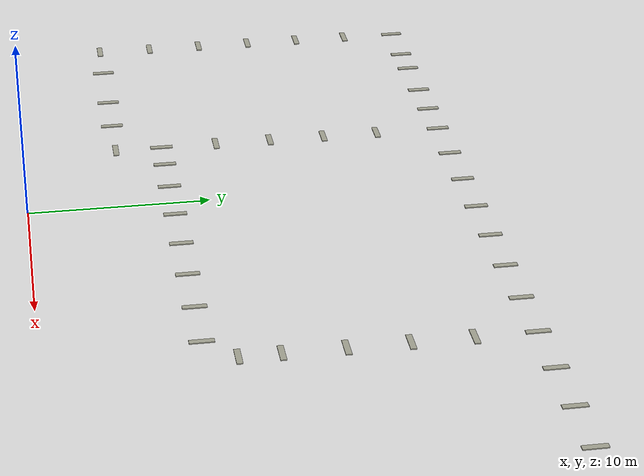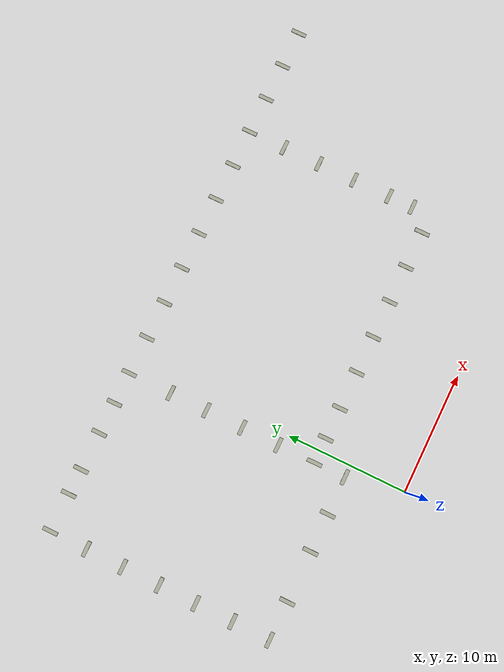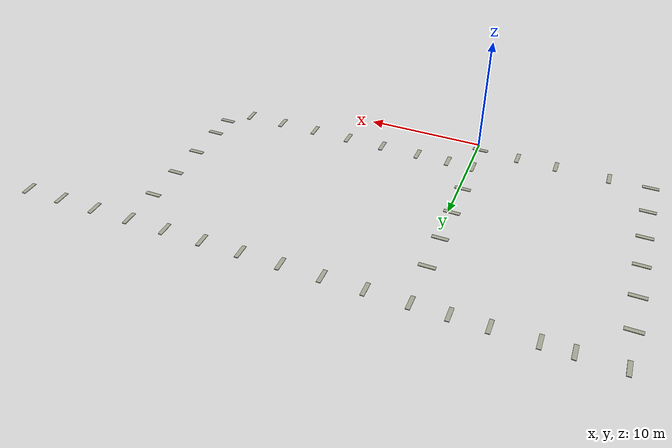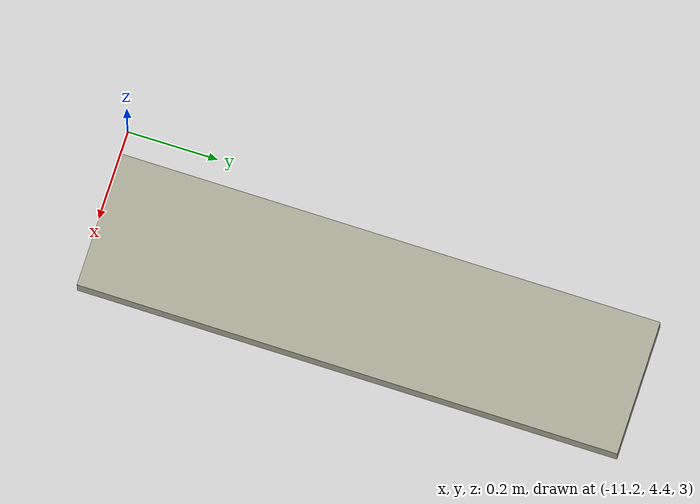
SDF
<?xml version="1.0" ?>
<sdf version="1.10">
  <model name="hallway_fluorescent_lights">
    <static>true</static>
    <!-- Generated from original hall_light_* point-light poses; long panel axis is perpendicular to hallway walls. -->
    <link name="hall_light_01">
      <pose>1 7.5 3 0 0 1.5708</pose>
      <collision name="hall_light_01_collision">
        <geometry>
          <box><size>1.2 0.3 0.05</size></box>
        </geometry>
      </collision>
      <visual name="hall_light_01_visual">
        <pose>0 0 -0.025 0 0 0</pose>
        <geometry>
          <box><size>1.2 0.3 0.05</size></box>
        </geometry>
        <material>
          <ambient>0.45 0.45 0.42 1</ambient>
          <diffuse>0.65 0.65 0.58 1</diffuse>
          <emissive>0.42 0.42 0.34 1</emissive>
          <specular>0.10 0.10 0.08 1</specular>
        </material>
      </visual>
      <light name="hall_light_01_spot" type="spot">
        <pose>0 0 -0.035 0 0 0</pose>
        <diffuse>1.0 0.98 0.88 1</diffuse>
        <specular>0.30 0.30 0.26 1</specular>
        <attenuation>
          <range>10</range>
          <constant>0.8</constant>
          <linear>0.2</linear>
          <quadratic>0.02</quadratic>
        </attenuation>
        <direction>0 0 -1</direction>
        <spot>
          <inner_angle>1.45</inner_angle>
          <outer_angle>2.45</outer_angle>
          <falloff>0.5</falloff>
        </spot>
        <cast_shadows>false</cast_shadows>
      </light>
    </link>
    <link name="hall_light_02">
      <pose>-1 7.5 3 0 0 1.5708</pose>
      <collision name="hall_light_02_collision">
        <geometry>
          <box><size>1.2 0.3 0.05</size></box>
        </geometry>
      </collision>
      <visual name="hall_light_02_visual">
        <pose>0 0 -0.025 0 0 0</pose>
        <geometry>
          <box><size>1.2 0.3 0.05</size></box>
        </geometry>
        <material>
          <ambient>0.45 0.45 0.42 1</ambient>
          <diffuse>0.65 0.65 0.58 1</diffuse>
          <emissive>0.42 0.42 0.34 1</emissive>
          <specular>0.10 0.10 0.08 1</specular>
        </material>
      </visual>
      <light name="hall_light_02_spot" type="spot">
        <pose>0 0 -0.035 0 0 0</pose>
        <diffuse>1.0 0.98 0.88 1</diffuse>
        <specular>0.30 0.30 0.26 1</specular>
        <attenuation>
          <range>10</range>
          <constant>0.8</constant>
          <linear>0.2</linear>
          <quadratic>0.02</quadratic>
        </attenuation>
        <direction>0 0 -1</direction>
        <spot>
          <inner_angle>1.45</inner_angle>
          <outer_angle>2.45</outer_angle>
          <falloff>0.5</falloff>
        </spot>
        <cast_shadows>false</cast_shadows>
      </light>
    </link>
    <link name="hall_light_03">
      <pose>-1 10.5 3 0 0 0</pose>
      <collision name="hall_light_03_collision">
        <geometry>
          <box><size>1.2 0.3 0.05</size></box>
        </geometry>
      </collision>
      <visual name="hall_light_03_visual">
        <pose>0 0 -0.025 0 0 0</pose>
        <geometry>
          <box><size>1.2 0.3 0.05</size></box>
        </geometry>
        <material>
          <ambient>0.45 0.45 0.42 1</ambient>
          <diffuse>0.65 0.65 0.58 1</diffuse>
          <emissive>0.42 0.42 0.34 1</emissive>
          <specular>0.10 0.10 0.08 1</specular>
        </material>
      </visual>
      <light name="hall_light_03_spot" type="spot">
        <pose>0 0 -0.035 0 0 0</pose>
        <diffuse>1.0 0.98 0.88 1</diffuse>
        <specular>0.30 0.30 0.26 1</specular>
        <attenuation>
          <range>10</range>
          <constant>0.8</constant>
          <linear>0.2</linear>
          <quadratic>0.02</quadratic>
        </attenuation>
        <direction>0 0 -1</direction>
        <spot>
          <inner_angle>1.45</inner_angle>
          <outer_angle>2.45</outer_angle>
          <falloff>0.5</falloff>
        </spot>
        <cast_shadows>false</cast_shadows>
      </light>
    </link>
    <link name="hall_light_04">
      <pose>-1 13.5 3 0 0 0</pose>
      <collision name="hall_light_04_collision">
        <geometry>
          <box><size>1.2 0.3 0.05</size></box>
        </geometry>
      </collision>
      <visual name="hall_light_04_visual">
        <pose>0 0 -0.025 0 0 0</pose>
        <geometry>
          <box><size>1.2 0.3 0.05</size></box>
        </geometry>
        <material>
          <ambient>0.45 0.45 0.42 1</ambient>
          <diffuse>0.65 0.65 0.58 1</diffuse>
          <emissive>0.42 0.42 0.34 1</emissive>
          <specular>0.10 0.10 0.08 1</specular>
        </material>
      </visual>
      <light name="hall_light_04_spot" type="spot">
        <pose>0 0 -0.035 0 0 0</pose>
        <diffuse>1.0 0.98 0.88 1</diffuse>
        <specular>0.30 0.30 0.26 1</specular>
        <attenuation>
          <range>10</range>
          <constant>0.8</constant>
          <linear>0.2</linear>
          <quadratic>0.02</quadratic>
        </attenuation>
        <direction>0 0 -1</direction>
        <spot>
          <inner_angle>1.45</inner_angle>
          <outer_angle>2.45</outer_angle>
          <falloff>0.5</falloff>
        </spot>
        <cast_shadows>false</cast_shadows>
      </light>
    </link>
    <link name="hall_light_05">
      <pose>-1 16.5 3 0 0 0</pose>
      <collision name="hall_light_05_collision">
        <geometry>
          <box><size>1.2 0.3 0.05</size></box>
        </geometry>
      </collision>
      <visual name="hall_light_05_visual">
        <pose>0 0 -0.025 0 0 0</pose>
        <geometry>
          <box><size>1.2 0.3 0.05</size></box>
        </geometry>
        <material>
          <ambient>0.45 0.45 0.42 1</ambient>
          <diffuse>0.65 0.65 0.58 1</diffuse>
          <emissive>0.42 0.42 0.34 1</emissive>
          <specular>0.10 0.10 0.08 1</specular>
        </material>
      </visual>
      <light name="hall_light_05_spot" type="spot">
        <pose>0 0 -0.035 0 0 0</pose>
        <diffuse>1.0 0.98 0.88 1</diffuse>
        <specular>0.30 0.30 0.26 1</specular>
        <attenuation>
          <range>10</range>
          <constant>0.8</constant>
          <linear>0.2</linear>
          <quadratic>0.02</quadratic>
        </attenuation>
        <direction>0 0 -1</direction>
        <spot>
          <inner_angle>1.45</inner_angle>
          <outer_angle>2.45</outer_angle>
          <falloff>0.5</falloff>
        </spot>
        <cast_shadows>false</cast_shadows>
      </light>
    </link>
    <link name="hall_light_06">
      <pose>-1 19.5 3 0 0 0</pose>
      <collision name="hall_light_06_collision">
        <geometry>
          <box><size>1.2 0.3 0.05</size></box>
        </geometry>
      </collision>
      <visual name="hall_light_06_visual">
        <pose>0 0 -0.025 0 0 0</pose>
        <geometry>
          <box><size>1.2 0.3 0.05</size></box>
        </geometry>
        <material>
          <ambient>0.45 0.45 0.42 1</ambient>
          <diffuse>0.65 0.65 0.58 1</diffuse>
          <emissive>0.42 0.42 0.34 1</emissive>
          <specular>0.10 0.10 0.08 1</specular>
        </material>
      </visual>
      <light name="hall_light_06_spot" type="spot">
        <pose>0 0 -0.035 0 0 0</pose>
        <diffuse>1.0 0.98 0.88 1</diffuse>
        <specular>0.30 0.30 0.26 1</specular>
        <attenuation>
          <range>10</range>
          <constant>0.8</constant>
          <linear>0.2</linear>
          <quadratic>0.02</quadratic>
        </attenuation>
        <direction>0 0 -1</direction>
        <spot>
          <inner_angle>1.45</inner_angle>
          <outer_angle>2.45</outer_angle>
          <falloff>0.5</falloff>
        </spot>
        <cast_shadows>false</cast_shadows>
      </light>
    </link>
    <link name="hall_light_07">
      <pose>-1 23 3 0 0 1.5708</pose>
      <collision name="hall_light_07_collision">
        <geometry>
          <box><size>1.2 0.3 0.05</size></box>
        </geometry>
      </collision>
      <visual name="hall_light_07_visual">
        <pose>0 0 -0.025 0 0 0</pose>
        <geometry>
          <box><size>1.2 0.3 0.05</size></box>
        </geometry>
        <material>
          <ambient>0.45 0.45 0.42 1</ambient>
          <diffuse>0.65 0.65 0.58 1</diffuse>
          <emissive>0.42 0.42 0.34 1</emissive>
          <specular>0.10 0.10 0.08 1</specular>
        </material>
      </visual>
      <light name="hall_light_07_spot" type="spot">
        <pose>0 0 -0.035 0 0 0</pose>
        <diffuse>1.0 0.98 0.88 1</diffuse>
        <specular>0.30 0.30 0.26 1</specular>
        <attenuation>
          <range>10</range>
          <constant>0.8</constant>
          <linear>0.2</linear>
          <quadratic>0.02</quadratic>
        </attenuation>
        <direction>0 0 -1</direction>
        <spot>
          <inner_angle>1.45</inner_angle>
          <outer_angle>2.45</outer_angle>
          <falloff>0.5</falloff>
        </spot>
        <cast_shadows>false</cast_shadows>
      </light>
    </link>
    <link name="hall_light_08">
      <pose>2 23 3 0 0 1.5708</pose>
      <collision name="hall_light_08_collision">
        <geometry>
          <box><size>1.2 0.3 0.05</size></box>
        </geometry>
      </collision>
      <visual name="hall_light_08_visual">
        <pose>0 0 -0.025 0 0 0</pose>
        <geometry>
          <box><size>1.2 0.3 0.05</size></box>
        </geometry>
        <material>
          <ambient>0.45 0.45 0.42 1</ambient>
          <diffuse>0.65 0.65 0.58 1</diffuse>
          <emissive>0.42 0.42 0.34 1</emissive>
          <specular>0.10 0.10 0.08 1</specular>
        </material>
      </visual>
      <light name="hall_light_08_spot" type="spot">
        <pose>0 0 -0.035 0 0 0</pose>
        <diffuse>1.0 0.98 0.88 1</diffuse>
        <specular>0.30 0.30 0.26 1</specular>
        <attenuation>
          <range>10</range>
          <constant>0.8</constant>
          <linear>0.2</linear>
          <quadratic>0.02</quadratic>
        </attenuation>
        <direction>0 0 -1</direction>
        <spot>
          <inner_angle>1.45</inner_angle>
          <outer_angle>2.45</outer_angle>
          <falloff>0.5</falloff>
        </spot>
        <cast_shadows>false</cast_shadows>
      </light>
    </link>
    <link name="hall_light_09">
      <pose>5 23 3 0 0 1.5708</pose>
      <collision name="hall_light_09_collision">
        <geometry>
          <box><size>1.2 0.3 0.05</size></box>
        </geometry>
      </collision>
      <visual name="hall_light_09_visual">
        <pose>0 0 -0.025 0 0 0</pose>
        <geometry>
          <box><size>1.2 0.3 0.05</size></box>
        </geometry>
        <material>
          <ambient>0.45 0.45 0.42 1</ambient>
          <diffuse>0.65 0.65 0.58 1</diffuse>
          <emissive>0.42 0.42 0.34 1</emissive>
          <specular>0.10 0.10 0.08 1</specular>
        </material>
      </visual>
      <light name="hall_light_09_spot" type="spot">
        <pose>0 0 -0.035 0 0 0</pose>
        <diffuse>1.0 0.98 0.88 1</diffuse>
        <specular>0.30 0.30 0.26 1</specular>
        <attenuation>
          <range>10</range>
          <constant>0.8</constant>
          <linear>0.2</linear>
          <quadratic>0.02</quadratic>
        </attenuation>
        <direction>0 0 -1</direction>
        <spot>
          <inner_angle>1.45</inner_angle>
          <outer_angle>2.45</outer_angle>
          <falloff>0.5</falloff>
        </spot>
        <cast_shadows>false</cast_shadows>
      </light>
    </link>
    <link name="hall_light_10">
      <pose>8 23 3 0 0 1.5708</pose>
      <collision name="hall_light_10_collision">
        <geometry>
          <box><size>1.2 0.3 0.05</size></box>
        </geometry>
      </collision>
      <visual name="hall_light_10_visual">
        <pose>0 0 -0.025 0 0 0</pose>
        <geometry>
          <box><size>1.2 0.3 0.05</size></box>
        </geometry>
        <material>
          <ambient>0.45 0.45 0.42 1</ambient>
          <diffuse>0.65 0.65 0.58 1</diffuse>
          <emissive>0.42 0.42 0.34 1</emissive>
          <specular>0.10 0.10 0.08 1</specular>
        </material>
      </visual>
      <light name="hall_light_10_spot" type="spot">
        <pose>0 0 -0.035 0 0 0</pose>
        <diffuse>1.0 0.98 0.88 1</diffuse>
        <specular>0.30 0.30 0.26 1</specular>
        <attenuation>
          <range>10</range>
          <constant>0.8</constant>
          <linear>0.2</linear>
          <quadratic>0.02</quadratic>
        </attenuation>
        <direction>0 0 -1</direction>
        <spot>
          <inner_angle>1.45</inner_angle>
          <outer_angle>2.45</outer_angle>
          <falloff>0.5</falloff>
        </spot>
        <cast_shadows>false</cast_shadows>
      </light>
    </link>
    <link name="hall_light_11">
      <pose>11 23 3 0 0 1.5708</pose>
      <collision name="hall_light_11_collision">
        <geometry>
          <box><size>1.2 0.3 0.05</size></box>
        </geometry>
      </collision>
      <visual name="hall_light_11_visual">
        <pose>0 0 -0.025 0 0 0</pose>
        <geometry>
          <box><size>1.2 0.3 0.05</size></box>
        </geometry>
        <material>
          <ambient>0.45 0.45 0.42 1</ambient>
          <diffuse>0.65 0.65 0.58 1</diffuse>
          <emissive>0.42 0.42 0.34 1</emissive>
          <specular>0.10 0.10 0.08 1</specular>
        </material>
      </visual>
      <light name="hall_light_11_spot" type="spot">
        <pose>0 0 -0.035 0 0 0</pose>
        <diffuse>1.0 0.98 0.88 1</diffuse>
        <specular>0.30 0.30 0.26 1</specular>
        <attenuation>
          <range>10</range>
          <constant>0.8</constant>
          <linear>0.2</linear>
          <quadratic>0.02</quadratic>
        </attenuation>
        <direction>0 0 -1</direction>
        <spot>
          <inner_angle>1.45</inner_angle>
          <outer_angle>2.45</outer_angle>
          <falloff>0.5</falloff>
        </spot>
        <cast_shadows>false</cast_shadows>
      </light>
    </link>
    <link name="hall_light_12">
      <pose>14 23 3 0 0 1.5708</pose>
      <collision name="hall_light_12_collision">
        <geometry>
          <box><size>1.2 0.3 0.05</size></box>
        </geometry>
      </collision>
      <visual name="hall_light_12_visual">
        <pose>0 0 -0.025 0 0 0</pose>
        <geometry>
          <box><size>1.2 0.3 0.05</size></box>
        </geometry>
        <material>
          <ambient>0.45 0.45 0.42 1</ambient>
          <diffuse>0.65 0.65 0.58 1</diffuse>
          <emissive>0.42 0.42 0.34 1</emissive>
          <specular>0.10 0.10 0.08 1</specular>
        </material>
      </visual>
      <light name="hall_light_12_spot" type="spot">
        <pose>0 0 -0.035 0 0 0</pose>
        <diffuse>1.0 0.98 0.88 1</diffuse>
        <specular>0.30 0.30 0.26 1</specular>
        <attenuation>
          <range>10</range>
          <constant>0.8</constant>
          <linear>0.2</linear>
          <quadratic>0.02</quadratic>
        </attenuation>
        <direction>0 0 -1</direction>
        <spot>
          <inner_angle>1.45</inner_angle>
          <outer_angle>2.45</outer_angle>
          <falloff>0.5</falloff>
        </spot>
        <cast_shadows>false</cast_shadows>
      </light>
    </link>
    <link name="hall_light_13">
      <pose>17 23 3 0 0 1.5708</pose>
      <collision name="hall_light_13_collision">
        <geometry>
          <box><size>1.2 0.3 0.05</size></box>
        </geometry>
      </collision>
      <visual name="hall_light_13_visual">
        <pose>0 0 -0.025 0 0 0</pose>
        <geometry>
          <box><size>1.2 0.3 0.05</size></box>
        </geometry>
        <material>
          <ambient>0.45 0.45 0.42 1</ambient>
          <diffuse>0.65 0.65 0.58 1</diffuse>
          <emissive>0.42 0.42 0.34 1</emissive>
          <specular>0.10 0.10 0.08 1</specular>
        </material>
      </visual>
      <light name="hall_light_13_spot" type="spot">
        <pose>0 0 -0.035 0 0 0</pose>
        <diffuse>1.0 0.98 0.88 1</diffuse>
        <specular>0.30 0.30 0.26 1</specular>
        <attenuation>
          <range>10</range>
          <constant>0.8</constant>
          <linear>0.2</linear>
          <quadratic>0.02</quadratic>
        </attenuation>
        <direction>0 0 -1</direction>
        <spot>
          <inner_angle>1.45</inner_angle>
          <outer_angle>2.45</outer_angle>
          <falloff>0.5</falloff>
        </spot>
        <cast_shadows>false</cast_shadows>
      </light>
    </link>
    <link name="hall_light_14">
      <pose>20 23 3 0 0 1.5708</pose>
      <collision name="hall_light_14_collision">
        <geometry>
          <box><size>1.2 0.3 0.05</size></box>
        </geometry>
      </collision>
      <visual name="hall_light_14_visual">
        <pose>0 0 -0.025 0 0 0</pose>
        <geometry>
          <box><size>1.2 0.3 0.05</size></box>
        </geometry>
        <material>
          <ambient>0.45 0.45 0.42 1</ambient>
          <diffuse>0.65 0.65 0.58 1</diffuse>
          <emissive>0.42 0.42 0.34 1</emissive>
          <specular>0.10 0.10 0.08 1</specular>
        </material>
      </visual>
      <light name="hall_light_14_spot" type="spot">
        <pose>0 0 -0.035 0 0 0</pose>
        <diffuse>1.0 0.98 0.88 1</diffuse>
        <specular>0.30 0.30 0.26 1</specular>
        <attenuation>
          <range>10</range>
          <constant>0.8</constant>
          <linear>0.2</linear>
          <quadratic>0.02</quadratic>
        </attenuation>
        <direction>0 0 -1</direction>
        <spot>
          <inner_angle>1.45</inner_angle>
          <outer_angle>2.45</outer_angle>
          <falloff>0.5</falloff>
        </spot>
        <cast_shadows>false</cast_shadows>
      </light>
    </link>
    <link name="hall_light_15">
      <pose>23 23 3 0 0 1.5708</pose>
      <collision name="hall_light_15_collision">
        <geometry>
          <box><size>1.2 0.3 0.05</size></box>
        </geometry>
      </collision>
      <visual name="hall_light_15_visual">
        <pose>0 0 -0.025 0 0 0</pose>
        <geometry>
          <box><size>1.2 0.3 0.05</size></box>
        </geometry>
        <material>
          <ambient>0.45 0.45 0.42 1</ambient>
          <diffuse>0.65 0.65 0.58 1</diffuse>
          <emissive>0.42 0.42 0.34 1</emissive>
          <specular>0.10 0.10 0.08 1</specular>
        </material>
      </visual>
      <light name="hall_light_15_spot" type="spot">
        <pose>0 0 -0.035 0 0 0</pose>
        <diffuse>1.0 0.98 0.88 1</diffuse>
        <specular>0.30 0.30 0.26 1</specular>
        <attenuation>
          <range>10</range>
          <constant>0.8</constant>
          <linear>0.2</linear>
          <quadratic>0.02</quadratic>
        </attenuation>
        <direction>0 0 -1</direction>
        <spot>
          <inner_angle>1.45</inner_angle>
          <outer_angle>2.45</outer_angle>
          <falloff>0.5</falloff>
        </spot>
        <cast_shadows>false</cast_shadows>
      </light>
    </link>
    <link name="hall_light_16">
      <pose>26 23 3 0 0 1.5708</pose>
      <collision name="hall_light_16_collision">
        <geometry>
          <box><size>1.2 0.3 0.05</size></box>
        </geometry>
      </collision>
      <visual name="hall_light_16_visual">
        <pose>0 0 -0.025 0 0 0</pose>
        <geometry>
          <box><size>1.2 0.3 0.05</size></box>
        </geometry>
        <material>
          <ambient>0.45 0.45 0.42 1</ambient>
          <diffuse>0.65 0.65 0.58 1</diffuse>
          <emissive>0.42 0.42 0.34 1</emissive>
          <specular>0.10 0.10 0.08 1</specular>
        </material>
      </visual>
      <light name="hall_light_16_spot" type="spot">
        <pose>0 0 -0.035 0 0 0</pose>
        <diffuse>1.0 0.98 0.88 1</diffuse>
        <specular>0.30 0.30 0.26 1</specular>
        <attenuation>
          <range>10</range>
          <constant>0.8</constant>
          <linear>0.2</linear>
          <quadratic>0.02</quadratic>
        </attenuation>
        <direction>0 0 -1</direction>
        <spot>
          <inner_angle>1.45</inner_angle>
          <outer_angle>2.45</outer_angle>
          <falloff>0.5</falloff>
        </spot>
        <cast_shadows>false</cast_shadows>
      </light>
    </link>
    <link name="hall_light_17">
      <pose>29 23 3 0 0 1.5708</pose>
      <collision name="hall_light_17_collision">
        <geometry>
          <box><size>1.2 0.3 0.05</size></box>
        </geometry>
      </collision>
      <visual name="hall_light_17_visual">
        <pose>0 0 -0.025 0 0 0</pose>
        <geometry>
          <box><size>1.2 0.3 0.05</size></box>
        </geometry>
        <material>
          <ambient>0.45 0.45 0.42 1</ambient>
          <diffuse>0.65 0.65 0.58 1</diffuse>
          <emissive>0.42 0.42 0.34 1</emissive>
          <specular>0.10 0.10 0.08 1</specular>
        </material>
      </visual>
      <light name="hall_light_17_spot" type="spot">
        <pose>0 0 -0.035 0 0 0</pose>
        <diffuse>1.0 0.98 0.88 1</diffuse>
        <specular>0.30 0.30 0.26 1</specular>
        <attenuation>
          <range>10</range>
          <constant>0.8</constant>
          <linear>0.2</linear>
          <quadratic>0.02</quadratic>
        </attenuation>
        <direction>0 0 -1</direction>
        <spot>
          <inner_angle>1.45</inner_angle>
          <outer_angle>2.45</outer_angle>
          <falloff>0.5</falloff>
        </spot>
        <cast_shadows>false</cast_shadows>
      </light>
    </link>
    <link name="hall_light_14_18">
      <pose>20 20 3 0 0 0</pose>
      <collision name="hall_light_14_18_collision">
        <geometry>
          <box><size>1.2 0.3 0.05</size></box>
        </geometry>
      </collision>
      <visual name="hall_light_14_18_visual">
        <pose>0 0 -0.025 0 0 0</pose>
        <geometry>
          <box><size>1.2 0.3 0.05</size></box>
        </geometry>
        <material>
          <ambient>0.45 0.45 0.42 1</ambient>
          <diffuse>0.65 0.65 0.58 1</diffuse>
          <emissive>0.42 0.42 0.34 1</emissive>
          <specular>0.10 0.10 0.08 1</specular>
        </material>
      </visual>
      <light name="hall_light_14_18_spot" type="spot">
        <pose>0 0 -0.035 0 0 0</pose>
        <diffuse>1.0 0.98 0.88 1</diffuse>
        <specular>0.30 0.30 0.26 1</specular>
        <attenuation>
          <range>10</range>
          <constant>0.8</constant>
          <linear>0.2</linear>
          <quadratic>0.02</quadratic>
        </attenuation>
        <direction>0 0 -1</direction>
        <spot>
          <inner_angle>1.45</inner_angle>
          <outer_angle>2.45</outer_angle>
          <falloff>0.5</falloff>
        </spot>
        <cast_shadows>false</cast_shadows>
      </light>
    </link>
    <link name="hall_light_19">
      <pose>20 17 3 0 0 0</pose>
      <collision name="hall_light_19_collision">
        <geometry>
          <box><size>1.2 0.3 0.05</size></box>
        </geometry>
      </collision>
      <visual name="hall_light_19_visual">
        <pose>0 0 -0.025 0 0 0</pose>
        <geometry>
          <box><size>1.2 0.3 0.05</size></box>
        </geometry>
        <material>
          <ambient>0.45 0.45 0.42 1</ambient>
          <diffuse>0.65 0.65 0.58 1</diffuse>
          <emissive>0.42 0.42 0.34 1</emissive>
          <specular>0.10 0.10 0.08 1</specular>
        </material>
      </visual>
      <light name="hall_light_19_spot" type="spot">
        <pose>0 0 -0.035 0 0 0</pose>
        <diffuse>1.0 0.98 0.88 1</diffuse>
        <specular>0.30 0.30 0.26 1</specular>
        <attenuation>
          <range>10</range>
          <constant>0.8</constant>
          <linear>0.2</linear>
          <quadratic>0.02</quadratic>
        </attenuation>
        <direction>0 0 -1</direction>
        <spot>
          <inner_angle>1.45</inner_angle>
          <outer_angle>2.45</outer_angle>
          <falloff>0.5</falloff>
        </spot>
        <cast_shadows>false</cast_shadows>
      </light>
    </link>
    <link name="hall_light_20">
      <pose>20 14 3 0 0 0</pose>
      <collision name="hall_light_20_collision">
        <geometry>
          <box><size>1.2 0.3 0.05</size></box>
        </geometry>
      </collision>
      <visual name="hall_light_20_visual">
        <pose>0 0 -0.025 0 0 0</pose>
        <geometry>
          <box><size>1.2 0.3 0.05</size></box>
        </geometry>
        <material>
          <ambient>0.45 0.45 0.42 1</ambient>
          <diffuse>0.65 0.65 0.58 1</diffuse>
          <emissive>0.42 0.42 0.34 1</emissive>
          <specular>0.10 0.10 0.08 1</specular>
        </material>
      </visual>
      <light name="hall_light_20_spot" type="spot">
        <pose>0 0 -0.035 0 0 0</pose>
        <diffuse>1.0 0.98 0.88 1</diffuse>
        <specular>0.30 0.30 0.26 1</specular>
        <attenuation>
          <range>10</range>
          <constant>0.8</constant>
          <linear>0.2</linear>
          <quadratic>0.02</quadratic>
        </attenuation>
        <direction>0 0 -1</direction>
        <spot>
          <inner_angle>1.45</inner_angle>
          <outer_angle>2.45</outer_angle>
          <falloff>0.5</falloff>
        </spot>
        <cast_shadows>false</cast_shadows>
      </light>
    </link>
    <link name="hall_light_21">
      <pose>20 11 3 0 0 0</pose>
      <collision name="hall_light_21_collision">
        <geometry>
          <box><size>1.2 0.3 0.05</size></box>
        </geometry>
      </collision>
      <visual name="hall_light_21_visual">
        <pose>0 0 -0.025 0 0 0</pose>
        <geometry>
          <box><size>1.2 0.3 0.05</size></box>
        </geometry>
        <material>
          <ambient>0.45 0.45 0.42 1</ambient>
          <diffuse>0.65 0.65 0.58 1</diffuse>
          <emissive>0.42 0.42 0.34 1</emissive>
          <specular>0.10 0.10 0.08 1</specular>
        </material>
      </visual>
      <light name="hall_light_21_spot" type="spot">
        <pose>0 0 -0.035 0 0 0</pose>
        <diffuse>1.0 0.98 0.88 1</diffuse>
        <specular>0.30 0.30 0.26 1</specular>
        <attenuation>
          <range>10</range>
          <constant>0.8</constant>
          <linear>0.2</linear>
          <quadratic>0.02</quadratic>
        </attenuation>
        <direction>0 0 -1</direction>
        <spot>
          <inner_angle>1.45</inner_angle>
          <outer_angle>2.45</outer_angle>
          <falloff>0.5</falloff>
        </spot>
        <cast_shadows>false</cast_shadows>
      </light>
    </link>
    <link name="hall_light_22">
      <pose>20 9 3 0 0 0</pose>
      <collision name="hall_light_22_collision">
        <geometry>
          <box><size>1.2 0.3 0.05</size></box>
        </geometry>
      </collision>
      <visual name="hall_light_22_visual">
        <pose>0 0 -0.025 0 0 0</pose>
        <geometry>
          <box><size>1.2 0.3 0.05</size></box>
        </geometry>
        <material>
          <ambient>0.45 0.45 0.42 1</ambient>
          <diffuse>0.65 0.65 0.58 1</diffuse>
          <emissive>0.42 0.42 0.34 1</emissive>
          <specular>0.10 0.10 0.08 1</specular>
        </material>
      </visual>
      <light name="hall_light_22_spot" type="spot">
        <pose>0 0 -0.035 0 0 0</pose>
        <diffuse>1.0 0.98 0.88 1</diffuse>
        <specular>0.30 0.30 0.26 1</specular>
        <attenuation>
          <range>10</range>
          <constant>0.8</constant>
          <linear>0.2</linear>
          <quadratic>0.02</quadratic>
        </attenuation>
        <direction>0 0 -1</direction>
        <spot>
          <inner_angle>1.45</inner_angle>
          <outer_angle>2.45</outer_angle>
          <falloff>0.5</falloff>
        </spot>
        <cast_shadows>false</cast_shadows>
      </light>
    </link>
    <link name="hall_light_23">
      <pose>18.5 7.5 3 0 0 1.5708</pose>
      <collision name="hall_light_23_collision">
        <geometry>
          <box><size>1.2 0.3 0.05</size></box>
        </geometry>
      </collision>
      <visual name="hall_light_23_visual">
        <pose>0 0 -0.025 0 0 0</pose>
        <geometry>
          <box><size>1.2 0.3 0.05</size></box>
        </geometry>
        <material>
          <ambient>0.45 0.45 0.42 1</ambient>
          <diffuse>0.65 0.65 0.58 1</diffuse>
          <emissive>0.42 0.42 0.34 1</emissive>
          <specular>0.10 0.10 0.08 1</specular>
        </material>
      </visual>
      <light name="hall_light_23_spot" type="spot">
        <pose>0 0 -0.035 0 0 0</pose>
        <diffuse>1.0 0.98 0.88 1</diffuse>
        <specular>0.30 0.30 0.26 1</specular>
        <attenuation>
          <range>10</range>
          <constant>0.8</constant>
          <linear>0.2</linear>
          <quadratic>0.02</quadratic>
        </attenuation>
        <direction>0 0 -1</direction>
        <spot>
          <inner_angle>1.45</inner_angle>
          <outer_angle>2.45</outer_angle>
          <falloff>0.5</falloff>
        </spot>
        <cast_shadows>false</cast_shadows>
      </light>
    </link>
    <link name="hall_light_24">
      <pose>15.5 7.5 3 0 0 1.5708</pose>
      <collision name="hall_light_24_collision">
        <geometry>
          <box><size>1.2 0.3 0.05</size></box>
        </geometry>
      </collision>
      <visual name="hall_light_24_visual">
        <pose>0 0 -0.025 0 0 0</pose>
        <geometry>
          <box><size>1.2 0.3 0.05</size></box>
        </geometry>
        <material>
          <ambient>0.45 0.45 0.42 1</ambient>
          <diffuse>0.65 0.65 0.58 1</diffuse>
          <emissive>0.42 0.42 0.34 1</emissive>
          <specular>0.10 0.10 0.08 1</specular>
        </material>
      </visual>
      <light name="hall_light_24_spot" type="spot">
        <pose>0 0 -0.035 0 0 0</pose>
        <diffuse>1.0 0.98 0.88 1</diffuse>
        <specular>0.30 0.30 0.26 1</specular>
        <attenuation>
          <range>10</range>
          <constant>0.8</constant>
          <linear>0.2</linear>
          <quadratic>0.02</quadratic>
        </attenuation>
        <direction>0 0 -1</direction>
        <spot>
          <inner_angle>1.45</inner_angle>
          <outer_angle>2.45</outer_angle>
          <falloff>0.5</falloff>
        </spot>
        <cast_shadows>false</cast_shadows>
      </light>
    </link>
    <link name="hall_light_25">
      <pose>12.5 7.5 3 0 0 1.5708</pose>
      <collision name="hall_light_25_collision">
        <geometry>
          <box><size>1.2 0.3 0.05</size></box>
        </geometry>
      </collision>
      <visual name="hall_light_25_visual">
        <pose>0 0 -0.025 0 0 0</pose>
        <geometry>
          <box><size>1.2 0.3 0.05</size></box>
        </geometry>
        <material>
          <ambient>0.45 0.45 0.42 1</ambient>
          <diffuse>0.65 0.65 0.58 1</diffuse>
          <emissive>0.42 0.42 0.34 1</emissive>
          <specular>0.10 0.10 0.08 1</specular>
        </material>
      </visual>
      <light name="hall_light_25_spot" type="spot">
        <pose>0 0 -0.035 0 0 0</pose>
        <diffuse>1.0 0.98 0.88 1</diffuse>
        <specular>0.30 0.30 0.26 1</specular>
        <attenuation>
          <range>10</range>
          <constant>0.8</constant>
          <linear>0.2</linear>
          <quadratic>0.02</quadratic>
        </attenuation>
        <direction>0 0 -1</direction>
        <spot>
          <inner_angle>1.45</inner_angle>
          <outer_angle>2.45</outer_angle>
          <falloff>0.5</falloff>
        </spot>
        <cast_shadows>false</cast_shadows>
      </light>
    </link>
    <link name="hall_light_26">
      <pose>9.5 7.5 3 0 0 1.5708</pose>
      <collision name="hall_light_26_collision">
        <geometry>
          <box><size>1.2 0.3 0.05</size></box>
        </geometry>
      </collision>
      <visual name="hall_light_26_visual">
        <pose>0 0 -0.025 0 0 0</pose>
        <geometry>
          <box><size>1.2 0.3 0.05</size></box>
        </geometry>
        <material>
          <ambient>0.45 0.45 0.42 1</ambient>
          <diffuse>0.65 0.65 0.58 1</diffuse>
          <emissive>0.42 0.42 0.34 1</emissive>
          <specular>0.10 0.10 0.08 1</specular>
        </material>
      </visual>
      <light name="hall_light_26_spot" type="spot">
        <pose>0 0 -0.035 0 0 0</pose>
        <diffuse>1.0 0.98 0.88 1</diffuse>
        <specular>0.30 0.30 0.26 1</specular>
        <attenuation>
          <range>10</range>
          <constant>0.8</constant>
          <linear>0.2</linear>
          <quadratic>0.02</quadratic>
        </attenuation>
        <direction>0 0 -1</direction>
        <spot>
          <inner_angle>1.45</inner_angle>
          <outer_angle>2.45</outer_angle>
          <falloff>0.5</falloff>
        </spot>
        <cast_shadows>false</cast_shadows>
      </light>
    </link>
    <link name="hall_light_27">
      <pose>6.5 7.5 3 0 0 1.5708</pose>
      <collision name="hall_light_27_collision">
        <geometry>
          <box><size>1.2 0.3 0.05</size></box>
        </geometry>
      </collision>
      <visual name="hall_light_27_visual">
        <pose>0 0 -0.025 0 0 0</pose>
        <geometry>
          <box><size>1.2 0.3 0.05</size></box>
        </geometry>
        <material>
          <ambient>0.45 0.45 0.42 1</ambient>
          <diffuse>0.65 0.65 0.58 1</diffuse>
          <emissive>0.42 0.42 0.34 1</emissive>
          <specular>0.10 0.10 0.08 1</specular>
        </material>
      </visual>
      <light name="hall_light_27_spot" type="spot">
        <pose>0 0 -0.035 0 0 0</pose>
        <diffuse>1.0 0.98 0.88 1</diffuse>
        <specular>0.30 0.30 0.26 1</specular>
        <attenuation>
          <range>10</range>
          <constant>0.8</constant>
          <linear>0.2</linear>
          <quadratic>0.02</quadratic>
        </attenuation>
        <direction>0 0 -1</direction>
        <spot>
          <inner_angle>1.45</inner_angle>
          <outer_angle>2.45</outer_angle>
          <falloff>0.5</falloff>
        </spot>
        <cast_shadows>false</cast_shadows>
      </light>
    </link>
    <link name="hall_light_28">
      <pose>3.5 7.5 3 0 0 1.5708</pose>
      <collision name="hall_light_28_collision">
        <geometry>
          <box><size>1.2 0.3 0.05</size></box>
        </geometry>
      </collision>
      <visual name="hall_light_28_visual">
        <pose>0 0 -0.025 0 0 0</pose>
        <geometry>
          <box><size>1.2 0.3 0.05</size></box>
        </geometry>
        <material>
          <ambient>0.45 0.45 0.42 1</ambient>
          <diffuse>0.65 0.65 0.58 1</diffuse>
          <emissive>0.42 0.42 0.34 1</emissive>
          <specular>0.10 0.10 0.08 1</specular>
        </material>
      </visual>
      <light name="hall_light_28_spot" type="spot">
        <pose>0 0 -0.035 0 0 0</pose>
        <diffuse>1.0 0.98 0.88 1</diffuse>
        <specular>0.30 0.30 0.26 1</specular>
        <attenuation>
          <range>10</range>
          <constant>0.8</constant>
          <linear>0.2</linear>
          <quadratic>0.02</quadratic>
        </attenuation>
        <direction>0 0 -1</direction>
        <spot>
          <inner_angle>1.45</inner_angle>
          <outer_angle>2.45</outer_angle>
          <falloff>0.5</falloff>
        </spot>
        <cast_shadows>false</cast_shadows>
      </light>
    </link>
    <link name="hall_light_2_29">
      <pose>-1 5 3 0 0 0</pose>
      <collision name="hall_light_2_29_collision">
        <geometry>
          <box><size>1.2 0.3 0.05</size></box>
        </geometry>
      </collision>
      <visual name="hall_light_2_29_visual">
        <pose>0 0 -0.025 0 0 0</pose>
        <geometry>
          <box><size>1.2 0.3 0.05</size></box>
        </geometry>
        <material>
          <ambient>0.45 0.45 0.42 1</ambient>
          <diffuse>0.65 0.65 0.58 1</diffuse>
          <emissive>0.42 0.42 0.34 1</emissive>
          <specular>0.10 0.10 0.08 1</specular>
        </material>
      </visual>
      <light name="hall_light_2_29_spot" type="spot">
        <pose>0 0 -0.035 0 0 0</pose>
        <diffuse>1.0 0.98 0.88 1</diffuse>
        <specular>0.30 0.30 0.26 1</specular>
        <attenuation>
          <range>10</range>
          <constant>0.8</constant>
          <linear>0.2</linear>
          <quadratic>0.02</quadratic>
        </attenuation>
        <direction>0 0 -1</direction>
        <spot>
          <inner_angle>1.45</inner_angle>
          <outer_angle>2.45</outer_angle>
          <falloff>0.5</falloff>
        </spot>
        <cast_shadows>false</cast_shadows>
      </light>
    </link>
    <link name="hall_light_30">
      <pose>-4 5 3 0 0 1.5708</pose>
      <collision name="hall_light_30_collision">
        <geometry>
          <box><size>1.2 0.3 0.05</size></box>
        </geometry>
      </collision>
      <visual name="hall_light_30_visual">
        <pose>0 0 -0.025 0 0 0</pose>
        <geometry>
          <box><size>1.2 0.3 0.05</size></box>
        </geometry>
        <material>
          <ambient>0.45 0.45 0.42 1</ambient>
          <diffuse>0.65 0.65 0.58 1</diffuse>
          <emissive>0.42 0.42 0.34 1</emissive>
          <specular>0.10 0.10 0.08 1</specular>
        </material>
      </visual>
      <light name="hall_light_30_spot" type="spot">
        <pose>0 0 -0.035 0 0 0</pose>
        <diffuse>1.0 0.98 0.88 1</diffuse>
        <specular>0.30 0.30 0.26 1</specular>
        <attenuation>
          <range>10</range>
          <constant>0.8</constant>
          <linear>0.2</linear>
          <quadratic>0.02</quadratic>
        </attenuation>
        <direction>0 0 -1</direction>
        <spot>
          <inner_angle>1.45</inner_angle>
          <outer_angle>2.45</outer_angle>
          <falloff>0.5</falloff>
        </spot>
        <cast_shadows>false</cast_shadows>
      </light>
    </link>
    <link name="hall_light_31">
      <pose>-7 5 3 0 0 1.5708</pose>
      <collision name="hall_light_31_collision">
        <geometry>
          <box><size>1.2 0.3 0.05</size></box>
        </geometry>
      </collision>
      <visual name="hall_light_31_visual">
        <pose>0 0 -0.025 0 0 0</pose>
        <geometry>
          <box><size>1.2 0.3 0.05</size></box>
        </geometry>
        <material>
          <ambient>0.45 0.45 0.42 1</ambient>
          <diffuse>0.65 0.65 0.58 1</diffuse>
          <emissive>0.42 0.42 0.34 1</emissive>
          <specular>0.10 0.10 0.08 1</specular>
        </material>
      </visual>
      <light name="hall_light_31_spot" type="spot">
        <pose>0 0 -0.035 0 0 0</pose>
        <diffuse>1.0 0.98 0.88 1</diffuse>
        <specular>0.30 0.30 0.26 1</specular>
        <attenuation>
          <range>10</range>
          <constant>0.8</constant>
          <linear>0.2</linear>
          <quadratic>0.02</quadratic>
        </attenuation>
        <direction>0 0 -1</direction>
        <spot>
          <inner_angle>1.45</inner_angle>
          <outer_angle>2.45</outer_angle>
          <falloff>0.5</falloff>
        </spot>
        <cast_shadows>false</cast_shadows>
      </light>
    </link>
    <link name="hall_light_32">
      <pose>-11 5 3 0 0 1.5708</pose>
      <collision name="hall_light_32_collision">
        <geometry>
          <box><size>1.2 0.3 0.05</size></box>
        </geometry>
      </collision>
      <visual name="hall_light_32_visual">
        <pose>0 0 -0.025 0 0 0</pose>
        <geometry>
          <box><size>1.2 0.3 0.05</size></box>
        </geometry>
        <material>
          <ambient>0.45 0.45 0.42 1</ambient>
          <diffuse>0.65 0.65 0.58 1</diffuse>
          <emissive>0.42 0.42 0.34 1</emissive>
          <specular>0.10 0.10 0.08 1</specular>
        </material>
      </visual>
      <light name="hall_light_32_spot" type="spot">
        <pose>0 0 -0.035 0 0 0</pose>
        <diffuse>1.0 0.98 0.88 1</diffuse>
        <specular>0.30 0.30 0.26 1</specular>
        <attenuation>
          <range>10</range>
          <constant>0.8</constant>
          <linear>0.2</linear>
          <quadratic>0.02</quadratic>
        </attenuation>
        <direction>0 0 -1</direction>
        <spot>
          <inner_angle>1.45</inner_angle>
          <outer_angle>2.45</outer_angle>
          <falloff>0.5</falloff>
        </spot>
        <cast_shadows>false</cast_shadows>
      </light>
    </link>
    <link name="hall_light_33">
      <pose>-14 5 3 0 0 0</pose>
      <collision name="hall_light_33_collision">
        <geometry>
          <box><size>1.2 0.3 0.05</size></box>
        </geometry>
      </collision>
      <visual name="hall_light_33_visual">
        <pose>0 0 -0.025 0 0 0</pose>
        <geometry>
          <box><size>1.2 0.3 0.05</size></box>
        </geometry>
        <material>
          <ambient>0.45 0.45 0.42 1</ambient>
          <diffuse>0.65 0.65 0.58 1</diffuse>
          <emissive>0.42 0.42 0.34 1</emissive>
          <specular>0.10 0.10 0.08 1</specular>
        </material>
      </visual>
      <light name="hall_light_33_spot" type="spot">
        <pose>0 0 -0.035 0 0 0</pose>
        <diffuse>1.0 0.98 0.88 1</diffuse>
        <specular>0.30 0.30 0.26 1</specular>
        <attenuation>
          <range>10</range>
          <constant>0.8</constant>
          <linear>0.2</linear>
          <quadratic>0.02</quadratic>
        </attenuation>
        <direction>0 0 -1</direction>
        <spot>
          <inner_angle>1.45</inner_angle>
          <outer_angle>2.45</outer_angle>
          <falloff>0.5</falloff>
        </spot>
        <cast_shadows>false</cast_shadows>
      </light>
    </link>
    <link name="hall_light_34">
      <pose>-14 8 3 0 0 0</pose>
      <collision name="hall_light_34_collision">
        <geometry>
          <box><size>1.2 0.3 0.05</size></box>
        </geometry>
      </collision>
      <visual name="hall_light_34_visual">
        <pose>0 0 -0.025 0 0 0</pose>
        <geometry>
          <box><size>1.2 0.3 0.05</size></box>
        </geometry>
        <material>
          <ambient>0.45 0.45 0.42 1</ambient>
          <diffuse>0.65 0.65 0.58 1</diffuse>
          <emissive>0.42 0.42 0.34 1</emissive>
          <specular>0.10 0.10 0.08 1</specular>
        </material>
      </visual>
      <light name="hall_light_34_spot" type="spot">
        <pose>0 0 -0.035 0 0 0</pose>
        <diffuse>1.0 0.98 0.88 1</diffuse>
        <specular>0.30 0.30 0.26 1</specular>
        <attenuation>
          <range>10</range>
          <constant>0.8</constant>
          <linear>0.2</linear>
          <quadratic>0.02</quadratic>
        </attenuation>
        <direction>0 0 -1</direction>
        <spot>
          <inner_angle>1.45</inner_angle>
          <outer_angle>2.45</outer_angle>
          <falloff>0.5</falloff>
        </spot>
        <cast_shadows>false</cast_shadows>
      </light>
    </link>
    <link name="hall_light_35">
      <pose>-14 11 3 0 0 0</pose>
      <collision name="hall_light_35_collision">
        <geometry>
          <box><size>1.2 0.3 0.05</size></box>
        </geometry>
      </collision>
      <visual name="hall_light_35_visual">
        <pose>0 0 -0.025 0 0 0</pose>
        <geometry>
          <box><size>1.2 0.3 0.05</size></box>
        </geometry>
        <material>
          <ambient>0.45 0.45 0.42 1</ambient>
          <diffuse>0.65 0.65 0.58 1</diffuse>
          <emissive>0.42 0.42 0.34 1</emissive>
          <specular>0.10 0.10 0.08 1</specular>
        </material>
      </visual>
      <light name="hall_light_35_spot" type="spot">
        <pose>0 0 -0.035 0 0 0</pose>
        <diffuse>1.0 0.98 0.88 1</diffuse>
        <specular>0.30 0.30 0.26 1</specular>
        <attenuation>
          <range>10</range>
          <constant>0.8</constant>
          <linear>0.2</linear>
          <quadratic>0.02</quadratic>
        </attenuation>
        <direction>0 0 -1</direction>
        <spot>
          <inner_angle>1.45</inner_angle>
          <outer_angle>2.45</outer_angle>
          <falloff>0.5</falloff>
        </spot>
        <cast_shadows>false</cast_shadows>
      </light>
    </link>
    <link name="hall_light_36">
      <pose>-14 14 3 0 0 0</pose>
      <collision name="hall_light_36_collision">
        <geometry>
          <box><size>1.2 0.3 0.05</size></box>
        </geometry>
      </collision>
      <visual name="hall_light_36_visual">
        <pose>0 0 -0.025 0 0 0</pose>
        <geometry>
          <box><size>1.2 0.3 0.05</size></box>
        </geometry>
        <material>
          <ambient>0.45 0.45 0.42 1</ambient>
          <diffuse>0.65 0.65 0.58 1</diffuse>
          <emissive>0.42 0.42 0.34 1</emissive>
          <specular>0.10 0.10 0.08 1</specular>
        </material>
      </visual>
      <light name="hall_light_36_spot" type="spot">
        <pose>0 0 -0.035 0 0 0</pose>
        <diffuse>1.0 0.98 0.88 1</diffuse>
        <specular>0.30 0.30 0.26 1</specular>
        <attenuation>
          <range>10</range>
          <constant>0.8</constant>
          <linear>0.2</linear>
          <quadratic>0.02</quadratic>
        </attenuation>
        <direction>0 0 -1</direction>
        <spot>
          <inner_angle>1.45</inner_angle>
          <outer_angle>2.45</outer_angle>
          <falloff>0.5</falloff>
        </spot>
        <cast_shadows>false</cast_shadows>
      </light>
    </link>
    <link name="hall_light_37">
      <pose>-14 17 3 0 0 0</pose>
      <collision name="hall_light_37_collision">
        <geometry>
          <box><size>1.2 0.3 0.05</size></box>
        </geometry>
      </collision>
      <visual name="hall_light_37_visual">
        <pose>0 0 -0.025 0 0 0</pose>
        <geometry>
          <box><size>1.2 0.3 0.05</size></box>
        </geometry>
        <material>
          <ambient>0.45 0.45 0.42 1</ambient>
          <diffuse>0.65 0.65 0.58 1</diffuse>
          <emissive>0.42 0.42 0.34 1</emissive>
          <specular>0.10 0.10 0.08 1</specular>
        </material>
      </visual>
      <light name="hall_light_37_spot" type="spot">
        <pose>0 0 -0.035 0 0 0</pose>
        <diffuse>1.0 0.98 0.88 1</diffuse>
        <specular>0.30 0.30 0.26 1</specular>
        <attenuation>
          <range>10</range>
          <constant>0.8</constant>
          <linear>0.2</linear>
          <quadratic>0.02</quadratic>
        </attenuation>
        <direction>0 0 -1</direction>
        <spot>
          <inner_angle>1.45</inner_angle>
          <outer_angle>2.45</outer_angle>
          <falloff>0.5</falloff>
        </spot>
        <cast_shadows>false</cast_shadows>
      </light>
    </link>
    <link name="hall_light_38">
      <pose>-14 20 3 0 0 0</pose>
      <collision name="hall_light_38_collision">
        <geometry>
          <box><size>1.2 0.3 0.05</size></box>
        </geometry>
      </collision>
      <visual name="hall_light_38_visual">
        <pose>0 0 -0.025 0 0 0</pose>
        <geometry>
          <box><size>1.2 0.3 0.05</size></box>
        </geometry>
        <material>
          <ambient>0.45 0.45 0.42 1</ambient>
          <diffuse>0.65 0.65 0.58 1</diffuse>
          <emissive>0.42 0.42 0.34 1</emissive>
          <specular>0.10 0.10 0.08 1</specular>
        </material>
      </visual>
      <light name="hall_light_38_spot" type="spot">
        <pose>0 0 -0.035 0 0 0</pose>
        <diffuse>1.0 0.98 0.88 1</diffuse>
        <specular>0.30 0.30 0.26 1</specular>
        <attenuation>
          <range>10</range>
          <constant>0.8</constant>
          <linear>0.2</linear>
          <quadratic>0.02</quadratic>
        </attenuation>
        <direction>0 0 -1</direction>
        <spot>
          <inner_angle>1.45</inner_angle>
          <outer_angle>2.45</outer_angle>
          <falloff>0.5</falloff>
        </spot>
        <cast_shadows>false</cast_shadows>
      </light>
    </link>
    <link name="hall_light_39">
      <pose>-14 23 3 0 0 1.5708</pose>
      <collision name="hall_light_39_collision">
        <geometry>
          <box><size>1.2 0.3 0.05</size></box>
        </geometry>
      </collision>
      <visual name="hall_light_39_visual">
        <pose>0 0 -0.025 0 0 0</pose>
        <geometry>
          <box><size>1.2 0.3 0.05</size></box>
        </geometry>
        <material>
          <ambient>0.45 0.45 0.42 1</ambient>
          <diffuse>0.65 0.65 0.58 1</diffuse>
          <emissive>0.42 0.42 0.34 1</emissive>
          <specular>0.10 0.10 0.08 1</specular>
        </material>
      </visual>
      <light name="hall_light_39_spot" type="spot">
        <pose>0 0 -0.035 0 0 0</pose>
        <diffuse>1.0 0.98 0.88 1</diffuse>
        <specular>0.30 0.30 0.26 1</specular>
        <attenuation>
          <range>10</range>
          <constant>0.8</constant>
          <linear>0.2</linear>
          <quadratic>0.02</quadratic>
        </attenuation>
        <direction>0 0 -1</direction>
        <spot>
          <inner_angle>1.45</inner_angle>
          <outer_angle>2.45</outer_angle>
          <falloff>0.5</falloff>
        </spot>
        <cast_shadows>false</cast_shadows>
      </light>
    </link>
    <link name="hall_light_40">
      <pose>-11 23 3 0 0 1.5708</pose>
      <collision name="hall_light_40_collision">
        <geometry>
          <box><size>1.2 0.3 0.05</size></box>
        </geometry>
      </collision>
      <visual name="hall_light_40_visual">
        <pose>0 0 -0.025 0 0 0</pose>
        <geometry>
          <box><size>1.2 0.3 0.05</size></box>
        </geometry>
        <material>
          <ambient>0.45 0.45 0.42 1</ambient>
          <diffuse>0.65 0.65 0.58 1</diffuse>
          <emissive>0.42 0.42 0.34 1</emissive>
          <specular>0.10 0.10 0.08 1</specular>
        </material>
      </visual>
      <light name="hall_light_40_spot" type="spot">
        <pose>0 0 -0.035 0 0 0</pose>
        <diffuse>1.0 0.98 0.88 1</diffuse>
        <specular>0.30 0.30 0.26 1</specular>
        <attenuation>
          <range>10</range>
          <constant>0.8</constant>
          <linear>0.2</linear>
          <quadratic>0.02</quadratic>
        </attenuation>
        <direction>0 0 -1</direction>
        <spot>
          <inner_angle>1.45</inner_angle>
          <outer_angle>2.45</outer_angle>
          <falloff>0.5</falloff>
        </spot>
        <cast_shadows>false</cast_shadows>
      </light>
    </link>
    <link name="hall_light_41">
      <pose>-9 23 3 0 0 1.5708</pose>
      <collision name="hall_light_41_collision">
        <geometry>
          <box><size>1.2 0.3 0.05</size></box>
        </geometry>
      </collision>
      <visual name="hall_light_41_visual">
        <pose>0 0 -0.025 0 0 0</pose>
        <geometry>
          <box><size>1.2 0.3 0.05</size></box>
        </geometry>
        <material>
          <ambient>0.45 0.45 0.42 1</ambient>
          <diffuse>0.65 0.65 0.58 1</diffuse>
          <emissive>0.42 0.42 0.34 1</emissive>
          <specular>0.10 0.10 0.08 1</specular>
        </material>
      </visual>
      <light name="hall_light_41_spot" type="spot">
        <pose>0 0 -0.035 0 0 0</pose>
        <diffuse>1.0 0.98 0.88 1</diffuse>
        <specular>0.30 0.30 0.26 1</specular>
        <attenuation>
          <range>10</range>
          <constant>0.8</constant>
          <linear>0.2</linear>
          <quadratic>0.02</quadratic>
        </attenuation>
        <direction>0 0 -1</direction>
        <spot>
          <inner_angle>1.45</inner_angle>
          <outer_angle>2.45</outer_angle>
          <falloff>0.5</falloff>
        </spot>
        <cast_shadows>false</cast_shadows>
      </light>
    </link>
    <link name="hall_light_42">
      <pose>-6 23 3 0 0 1.5708</pose>
      <collision name="hall_light_42_collision">
        <geometry>
          <box><size>1.2 0.3 0.05</size></box>
        </geometry>
      </collision>
      <visual name="hall_light_42_visual">
        <pose>0 0 -0.025 0 0 0</pose>
        <geometry>
          <box><size>1.2 0.3 0.05</size></box>
        </geometry>
        <material>
          <ambient>0.45 0.45 0.42 1</ambient>
          <diffuse>0.65 0.65 0.58 1</diffuse>
          <emissive>0.42 0.42 0.34 1</emissive>
          <specular>0.10 0.10 0.08 1</specular>
        </material>
      </visual>
      <light name="hall_light_42_spot" type="spot">
        <pose>0 0 -0.035 0 0 0</pose>
        <diffuse>1.0 0.98 0.88 1</diffuse>
        <specular>0.30 0.30 0.26 1</specular>
        <attenuation>
          <range>10</range>
          <constant>0.8</constant>
          <linear>0.2</linear>
          <quadratic>0.02</quadratic>
        </attenuation>
        <direction>0 0 -1</direction>
        <spot>
          <inner_angle>1.45</inner_angle>
          <outer_angle>2.45</outer_angle>
          <falloff>0.5</falloff>
        </spot>
        <cast_shadows>false</cast_shadows>
      </light>
    </link>
    <link name="hall_light_43">
      <pose>-3.5 23 3 0 0 1.5708</pose>
      <collision name="hall_light_43_collision">
        <geometry>
          <box><size>1.2 0.3 0.05</size></box>
        </geometry>
      </collision>
      <visual name="hall_light_43_visual">
        <pose>0 0 -0.025 0 0 0</pose>
        <geometry>
          <box><size>1.2 0.3 0.05</size></box>
        </geometry>
        <material>
          <ambient>0.45 0.45 0.42 1</ambient>
          <diffuse>0.65 0.65 0.58 1</diffuse>
          <emissive>0.42 0.42 0.34 1</emissive>
          <specular>0.10 0.10 0.08 1</specular>
        </material>
      </visual>
      <light name="hall_light_43_spot" type="spot">
        <pose>0 0 -0.035 0 0 0</pose>
        <diffuse>1.0 0.98 0.88 1</diffuse>
        <specular>0.30 0.30 0.26 1</specular>
        <attenuation>
          <range>10</range>
          <constant>0.8</constant>
          <linear>0.2</linear>
          <quadratic>0.02</quadratic>
        </attenuation>
        <direction>0 0 -1</direction>
        <spot>
          <inner_angle>1.45</inner_angle>
          <outer_angle>2.45</outer_angle>
          <falloff>0.5</falloff>
        </spot>
        <cast_shadows>false</cast_shadows>
      </light>
    </link>
  </model>
</sdf>
